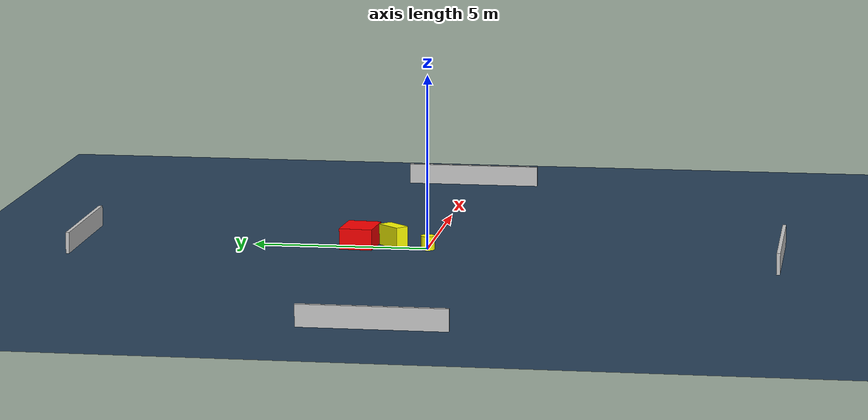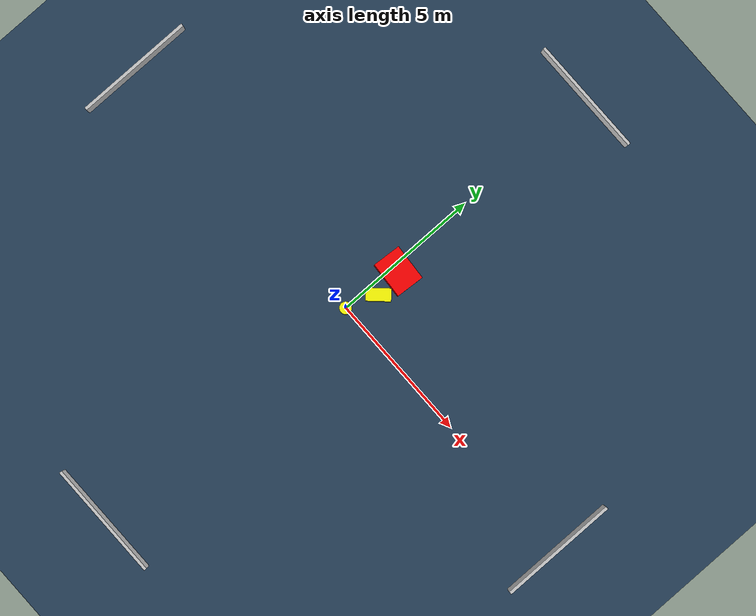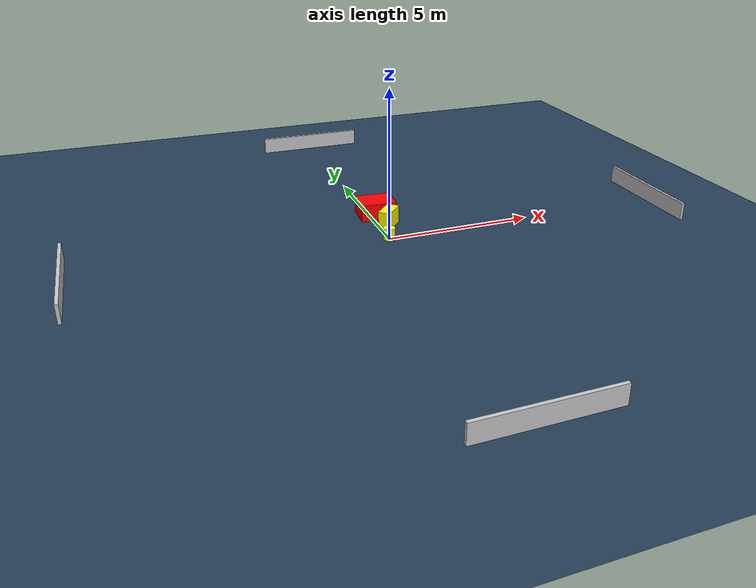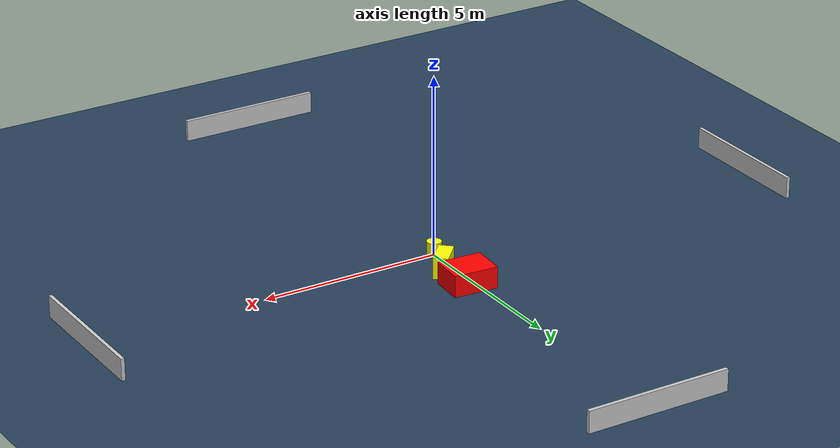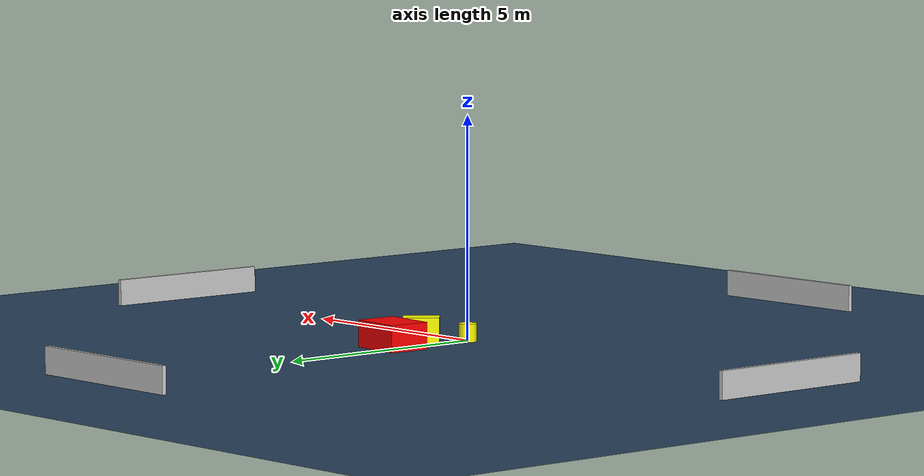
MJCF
<?xml version="1.0" ?>
<mujoco model="generated_environment">
  <option timestep="0.01" integrator="RK4" cone="elliptic"/>
  <default>
    <geom density="1"/>
  </default>
  <asset>
    <texture builtin="gradient" height="3072" name="skybox" rgb1="0.3 0.5 0.7" rgb2="0 0 0" type="skybox" width="512"/>
    <texture builtin="checker" height="300" name="groundplane" rgb1="0.2 0.3 0.4" rgb2="0.1 0.2 0.3" type="2d" width="300"/>
    <material name="groundplane" reflectance="0.2" texrepeat="5 5" texture="groundplane"/>
  </asset>
  <worldbody>
    <light dir="0 0 -1" directional="true" pos="0 0 1.5"/>
    <geom condim="3" friction="0.5 0.005 0.001" material="groundplane" name="floor" pos="0 0 0" size="0 0 0.05" type="plane"/>
    <body name="walls">
      <geom name="wall_1" condim="4" pos="-10.0 0.0 0.3" rgba="0.800000011920929 0.800000011920929 0.800000011920929 1.0" size="0.05 2.0 0.3" type="box"/>
      <geom name="wall_2" condim="4" pos="10.0 0.0 0.3" rgba="0.800000011920929 0.800000011920929 0.800000011920929 1.0" size="0.05 2.0 0.3" type="box"/>
      <geom name="wall_3" condim="4" pos="0.0 -10.0 0.3" rgba="0.800000011920929 0.800000011920929 0.800000011920929 1.0" size="2.0 0.05 0.3" type="box"/>
      <geom name="wall_4" condim="4" pos="0.0 10.0 0.3" rgba="0.800000011920929 0.800000011920929 0.800000011920929 1.0" size="2.0 0.05 0.3" type="box"/>
    </body>
    <body name="robot">
      <joint name="joint_x" type="slide" pos="0 0 0" axis="1 0 0"/>
      <joint name="joint_y" type="slide" pos="0 0 0" axis="0 1 0"/>
      <geom name="robot" type="cylinder" pos="0.0 0.0 0.2" size="0.2 0.2 0.0" mass="5.0" friction="1.0 0.005 0.0001" condim="4" rgba="1.0 1.0 0.0 1.0"/>
    </body>
    <body name="obstacle_1_movable">
      <geom name="obstacle_1_movable" condim="4" pos="0.36455868564767824 1.0409526824789432 0.3" euler="0 0 46.822783874509966" friction="0.0 0.005 0.001" rgba="1.0 1.0 0.0 1.0" size="0.4006732993282642 0.20623580587712706 0.3" type="box" mass="0.1"/>
      <joint type="free"/>
    </body>
    <body name="obstacle_2_static">
      <geom name="obstacle_2_static" condim="4" pos="0.2286205247420701 1.982116513555209 0.3" euler="0 0 176.05303431446586" friction="0.0 0.005 0.001" rgba="1.0 0.0 0.0 1.0" size="0.6126903698125945 0.4746597592221009 0.3" type="box"/>
    </body>
  </worldbody>
  <actuator>
    <motor name="actuator_x" joint="joint_x" gear="1" ctrlrange="-1 1"/>
    <motor name="actuator_y" joint="joint_y" gear="1" ctrlrange="-1 1"/>
  </actuator>
</mujoco>
